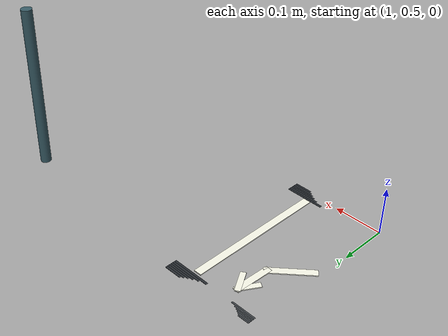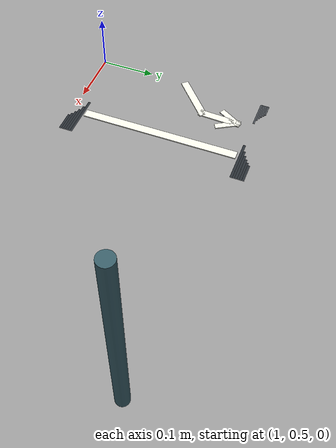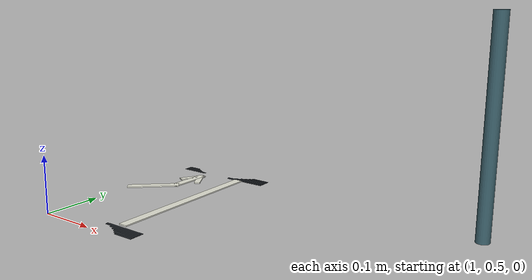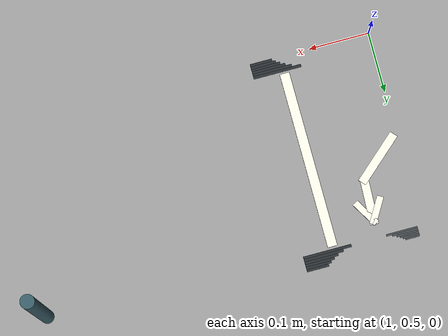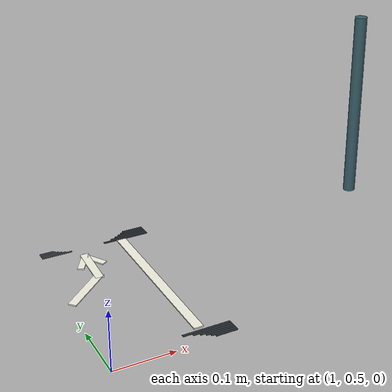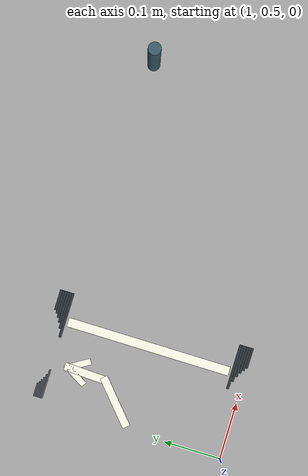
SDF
<sdf version="1.6">
 <world name="sandbox">
  <include><uri>model://sun</uri></include>
  <model name="fence_post_east_6">
   <static>true</static>
   <pose>1.620000 0.810000 0.170000 0.000000 0.000000 0.000000</pose>
   <link name="body">
    <collision name="collision">
     <geometry><cylinder><radius>0.011000</radius><length>0.340000</length></cylinder></geometry>
    </collision>
    <visual name="visual">
     <geometry><cylinder><radius>0.011000</radius><length>0.340000</length></cylinder></geometry>
     <material><ambient>0.22 0.36 0.40 1</ambient><diffuse>0.22 0.36 0.40 1</diffuse></material>
    </visual>
   </link>
  </model>
  <model name="outer_junction_1.2_0.525_00">
   <static>true</static>
   <pose>1.160153 0.522917 0.004350 0.000000 0.000000 0.000000</pose>
   <link name="body">
    <visual name="visual">
     <geometry><box><size>0.079694 0.004667 0.000700</size></box></geometry>
     <material><ambient>0.16 0.18 0.20 1</ambient><diffuse>0.16 0.18 0.20 1</diffuse></material>
    </visual>
   </link>
  </model>
  <model name="outer_junction_1.2_0.525_01">
   <static>true</static>
   <pose>1.167399 0.518750 0.004350 0.000000 0.000000 0.000000</pose>
   <link name="body">
    <visual name="visual">
     <geometry><box><size>0.065201 0.004667 0.000700</size></box></geometry>
     <material><ambient>0.16 0.18 0.20 1</ambient><diffuse>0.16 0.18 0.20 1</diffuse></material>
    </visual>
   </link>
  </model>
  <model name="outer_junction_1.2_0.525_02">
   <static>true</static>
   <pose>1.172220 0.514583 0.004350 0.000000 0.000000 0.000000</pose>
   <link name="body">
    <visual name="visual">
     <geometry><box><size>0.055561 0.004667 0.000700</size></box></geometry>
     <material><ambient>0.16 0.18 0.20 1</ambient><diffuse>0.16 0.18 0.20 1</diffuse></material>
    </visual>
   </link>
  </model>
  <model name="outer_junction_1.2_0.525_03">
   <static>true</static>
   <pose>1.176000 0.510417 0.004350 0.000000 0.000000 0.000000</pose>
   <link name="body">
    <visual name="visual">
     <geometry><box><size>0.048000 0.004667 0.000700</size></box></geometry>
     <material><ambient>0.16 0.18 0.20 1</ambient><diffuse>0.16 0.18 0.20 1</diffuse></material>
    </visual>
   </link>
  </model>
  <model name="outer_junction_1.2_0.525_04">
   <static>true</static>
   <pose>1.179148 0.506250 0.004350 0.000000 0.000000 0.000000</pose>
   <link name="body">
    <visual name="visual">
     <geometry><box><size>0.041704 0.004667 0.000700</size></box></geometry>
     <material><ambient>0.16 0.18 0.20 1</ambient><diffuse>0.16 0.18 0.20 1</diffuse></material>
    </visual>
   </link>
  </model>
  <model name="outer_junction_1.2_0.525_05">
   <static>true</static>
   <pose>1.181852 0.502083 0.004350 0.000000 0.000000 0.000000</pose>
   <link name="body">
    <visual name="visual">
     <geometry><box><size>0.036296 0.004667 0.000700</size></box></geometry>
     <material><ambient>0.16 0.18 0.20 1</ambient><diffuse>0.16 0.18 0.20 1</diffuse></material>
    </visual>
   </link>
  </model>
  <model name="outer_junction_1.2_0.825_00">
   <static>true</static>
   <pose>1.160153 0.827083 0.004350 0.000000 0.000000 0.000000</pose>
   <link name="body">
    <visual name="visual">
     <geometry><box><size>0.079694 0.004667 0.000700</size></box></geometry>
     <material><ambient>0.16 0.18 0.20 1</ambient><diffuse>0.16 0.18 0.20 1</diffuse></material>
    </visual>
   </link>
  </model>
  <model name="outer_junction_1.2_0.825_01">
   <static>true</static>
   <pose>1.167399 0.831250 0.004350 0.000000 0.000000 0.000000</pose>
   <link name="body">
    <visual name="visual">
     <geometry><box><size>0.065201 0.004667 0.000700</size></box></geometry>
     <material><ambient>0.16 0.18 0.20 1</ambient><diffuse>0.16 0.18 0.20 1</diffuse></material>
    </visual>
   </link>
  </model>
  <model name="outer_junction_1.2_0.825_02">
   <static>true</static>
   <pose>1.172220 0.835417 0.004350 0.000000 0.000000 0.000000</pose>
   <link name="body">
    <visual name="visual">
     <geometry><box><size>0.055561 0.004667 0.000700</size></box></geometry>
     <material><ambient>0.16 0.18 0.20 1</ambient><diffuse>0.16 0.18 0.20 1</diffuse></material>
    </visual>
   </link>
  </model>
  <model name="outer_junction_1.2_0.825_03">
   <static>true</static>
   <pose>1.176000 0.839583 0.004350 0.000000 0.000000 0.000000</pose>
   <link name="body">
    <visual name="visual">
     <geometry><box><size>0.048000 0.004667 0.000700</size></box></geometry>
     <material><ambient>0.16 0.18 0.20 1</ambient><diffuse>0.16 0.18 0.20 1</diffuse></material>
    </visual>
   </link>
  </model>
  <model name="outer_junction_1.2_0.825_04">
   <static>true</static>
   <pose>1.179148 0.843750 0.004350 0.000000 0.000000 0.000000</pose>
   <link name="body">
    <visual name="visual">
     <geometry><box><size>0.041704 0.004667 0.000700</size></box></geometry>
     <material><ambient>0.16 0.18 0.20 1</ambient><diffuse>0.16 0.18 0.20 1</diffuse></material>
    </visual>
   </link>
  </model>
  <model name="outer_junction_1.2_0.825_05">
   <static>true</static>
   <pose>1.181852 0.847917 0.004350 0.000000 0.000000 0.000000</pose>
   <link name="body">
    <visual name="visual">
     <geometry><box><size>0.036296 0.004667 0.000700</size></box></geometry>
     <material><ambient>0.16 0.18 0.20 1</ambient><diffuse>0.16 0.18 0.20 1</diffuse></material>
    </visual>
   </link>
  </model>
  <model name="parking_B_entry_mouth_1_00">
   <static>true</static>
   <pose>1.035901 0.826354 0.004350 0.000000 0.000000 0.000000</pose>
   <link name="body">
    <visual name="visual">
     <geometry><box><size>0.051801 0.003208 0.000700</size></box></geometry>
     <material><ambient>0.27 0.29 0.31 1</ambient><diffuse>0.27 0.29 0.31 1</diffuse></material>
    </visual>
   </link>
  </model>
  <model name="parking_B_entry_mouth_1_01">
   <static>true</static>
   <pose>1.031190 0.829062 0.004350 0.000000 0.000000 0.000000</pose>
   <link name="body">
    <visual name="visual">
     <geometry><box><size>0.042381 0.003208 0.000700</size></box></geometry>
     <material><ambient>0.27 0.29 0.31 1</ambient><diffuse>0.27 0.29 0.31 1</diffuse></material>
    </visual>
   </link>
  </model>
  <model name="parking_B_entry_mouth_1_02">
   <static>true</static>
   <pose>1.028057 0.831771 0.004350 0.000000 0.000000 0.000000</pose>
   <link name="body">
    <visual name="visual">
     <geometry><box><size>0.036115 0.003208 0.000700</size></box></geometry>
     <material><ambient>0.27 0.29 0.31 1</ambient><diffuse>0.27 0.29 0.31 1</diffuse></material>
    </visual>
   </link>
  </model>
  <model name="parking_B_entry_mouth_1_03">
   <static>true</static>
   <pose>1.025600 0.834479 0.004350 0.000000 0.000000 0.000000</pose>
   <link name="body">
    <visual name="visual">
     <geometry><box><size>0.031200 0.003208 0.000700</size></box></geometry>
     <material><ambient>0.27 0.29 0.31 1</ambient><diffuse>0.27 0.29 0.31 1</diffuse></material>
    </visual>
   </link>
  </model>
  <model name="parking_B_entry_mouth_1_04">
   <static>true</static>
   <pose>1.023554 0.837187 0.004350 0.000000 0.000000 0.000000</pose>
   <link name="body">
    <visual name="visual">
     <geometry><box><size>0.027108 0.003208 0.000700</size></box></geometry>
     <material><ambient>0.27 0.29 0.31 1</ambient><diffuse>0.27 0.29 0.31 1</diffuse></material>
    </visual>
   </link>
  </model>
  <model name="parking_B_entry_mouth_1_05">
   <static>true</static>
   <pose>1.021796 0.839896 0.004350 0.000000 0.000000 0.000000</pose>
   <link name="body">
    <visual name="visual">
     <geometry><box><size>0.023593 0.003208 0.000700</size></box></geometry>
     <material><ambient>0.27 0.29 0.31 1</ambient><diffuse>0.27 0.29 0.31 1</diffuse></material>
    </visual>
   </link>
  </model>
  <model name="fork_east_exit_left_branch">
   <static>true</static>
   <pose>1.041000 0.702500 0.006000 0.000000 -0.000000 0.725640</pose>
   <link name="body">
    <visual name="visual">
     <geometry><box><size>0.094879 0.014000 0.002000</size></box></geometry>
     <material><ambient>0.96 0.96 0.90 1</ambient><diffuse>0.96 0.96 0.90 1</diffuse></material>
    </visual>
   </link>
  </model>
  <model name="fork_east_exit_left_turn">
   <static>true</static>
   <pose>1.073500 0.764000 0.006000 0.000000 -0.000000 1.526707</pose>
   <link name="body">
    <visual name="visual">
     <geometry><box><size>0.080066 0.014000 0.002000</size></box></geometry>
     <material><ambient>0.96 0.96 0.90 1</ambient><diffuse>0.96 0.96 0.90 1</diffuse></material>
    </visual>
   </link>
  </model>
  <model name="fork_east_exit_left_head_-1">
   <static>true</static>
   <pose>1.084000 0.783000 0.006000 0.000000 -0.000000 2.111216</pose>
   <link name="body">
    <visual name="visual">
     <geometry><box><size>0.046986 0.011000 0.002000</size></box></geometry>
     <material><ambient>0.96 0.96 0.90 1</ambient><diffuse>0.96 0.96 0.90 1</diffuse></material>
    </visual>
   </link>
  </model>
  <model name="fork_east_exit_left_head_1">
   <static>true</static>
   <pose>1.066000 0.783000 0.006000 0.000000 -0.000000 1.030377</pose>
   <link name="body">
    <visual name="visual">
     <geometry><box><size>0.046986 0.011000 0.002000</size></box></geometry>
     <material><ambient>0.96 0.96 0.90 1</ambient><diffuse>0.96 0.96 0.90 1</diffuse></material>
    </visual>
   </link>
  </model>
  <model name="tstop_fork_east">
   <static>true</static>
   <pose>1.150000 0.675000 0.006000 0.000000 -0.000000 1.570796</pose>
   <link name="body">
    <visual name="visual">
     <geometry><box><size>0.292000 0.016000 0.002000</size></box></geometry>
     <material><ambient>0.96 0.96 0.90 1</ambient><diffuse>0.96 0.96 0.90 1</diffuse></material>
    </visual>
   </link>
  </model>
 </world>
</sdf>
